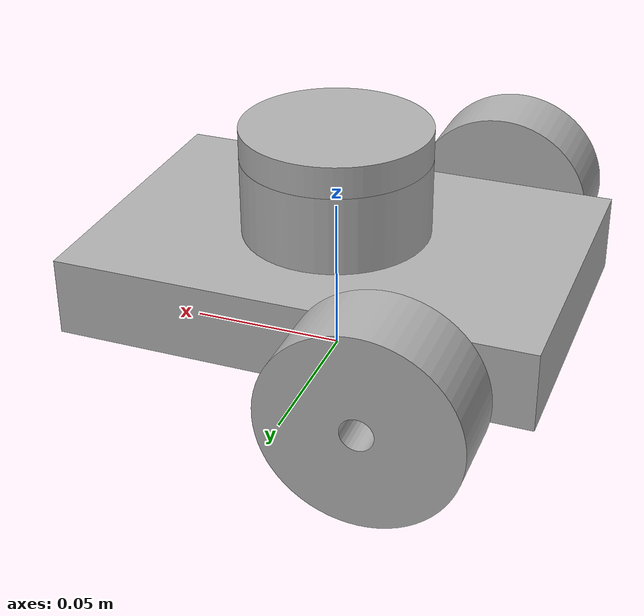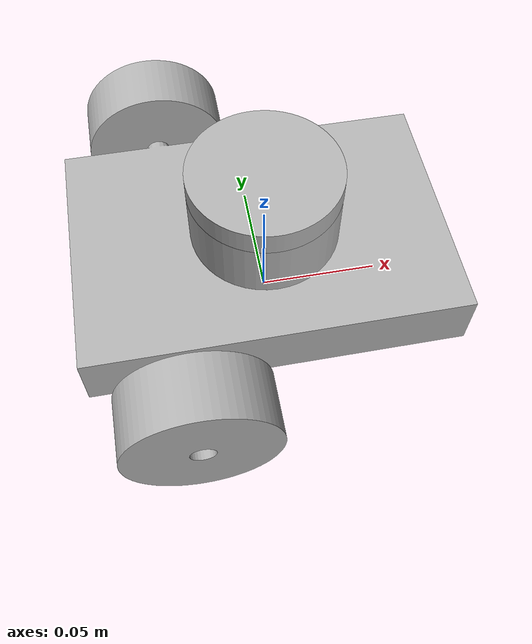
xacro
<?xml version="1.0" ?>
<robot name="rmp_bot_036" xmlns:xacro="http://www.ros.org/wiki/xacro">

<xacro:include filename="$(find rmp_bot_036_description)/urdf/materials.xacro" />
<xacro:include filename="$(find rmp_bot_036_description)/urdf/rmp_bot_036.trans" />
<xacro:include filename="$(find rmp_bot_036_description)/urdf/rmp_bot_036.gazebo" />
<link name="base_link">
  <inertial>
    <origin xyz="-0.0022330044536834058 1.0167481471132256e-17 0.033951078072480476" rpy="0 0 0"/>
    <mass value="0.47409202889451896"/>
    <inertia ixx="0.000417" iyy="0.000829" izz="0.001118" ixy="0.0" iyz="-0.0" ixz="-4e-06"/>
  </inertial>
  <visual>
    <origin xyz="0 0 0" rpy="0 0 0"/>
    <geometry>
      <mesh filename="package://rmp_bot_036_description/meshes/base_link.stl" scale="0.001 0.001 0.001"/>
    </geometry>
    <material name="silver"/>
  </visual>
  <collision>
    <origin xyz="0 0 0" rpy="0 0 0"/>
    <geometry>
      <mesh filename="package://rmp_bot_036_description/meshes/base_link.stl" scale="0.001 0.001 0.001"/>
    </geometry>
  </collision>
</link>

<link name="right_wheel_1">
  <inertial>
    <origin xyz="-1.6401167316631993e-07 -0.012500000000000011 1.0408340855860843e-17" rpy="0 0 0"/>
    <mass value="0.06391177554646729"/>
    <inertia ixx="1.8e-05" iyy="3e-05" izz="1.8e-05" ixy="0.0" iyz="-0.0" ixz="-0.0"/>
  </inertial>
  <visual>
    <origin xyz="0.037506 0.06 -0.03" rpy="0 0 0"/>
    <geometry>
      <mesh filename="package://rmp_bot_036_description/meshes/right_wheel_1.stl" scale="0.001 0.001 0.001"/>
    </geometry>
    <material name="silver"/>
  </visual>
  <collision>
    <origin xyz="0.037506 0.06 -0.03" rpy="0 0 0"/>
    <geometry>
      <mesh filename="package://rmp_bot_036_description/meshes/right_wheel_1.stl" scale="0.001 0.001 0.001"/>
    </geometry>
  </collision>
</link>

<link name="left_wheel_1">
  <inertial>
    <origin xyz="-1.6401167316631993e-07 0.012500000000000011 1.0408340855860843e-17" rpy="0 0 0"/>
    <mass value="0.06391177554646729"/>
    <inertia ixx="1.8e-05" iyy="3e-05" izz="1.8e-05" ixy="-0.0" iyz="0.0" ixz="-0.0"/>
  </inertial>
  <visual>
    <origin xyz="0.037506 -0.06 -0.03" rpy="0 0 0"/>
    <geometry>
      <mesh filename="package://rmp_bot_036_description/meshes/left_wheel_1.stl" scale="0.001 0.001 0.001"/>
    </geometry>
    <material name="silver"/>
  </visual>
  <collision>
    <origin xyz="0.037506 -0.06 -0.03" rpy="0 0 0"/>
    <geometry>
      <mesh filename="package://rmp_bot_036_description/meshes/left_wheel_1.stl" scale="0.001 0.001 0.001"/>
    </geometry>
  </collision>
</link>

<link name="ldar_1">
  <inertial>
    <origin xyz="0.0 0.0 0.005000000000000018" rpy="0 0 0"/>
    <mass value="0.24315927138785004"/>
    <inertia ixx="5.7e-05" iyy="5.7e-05" izz="0.000109" ixy="0.0" iyz="-0.0" ixz="-0.0"/>
  </inertial>
  <visual>
    <origin xyz="-0.0 -0.0 -0.0675" rpy="0 0 0"/>
    <geometry>
      <mesh filename="package://rmp_bot_036_description/meshes/ldar_1.stl" scale="0.001 0.001 0.001"/>
    </geometry>
    <material name="silver"/>
  </visual>
  <collision>
    <origin xyz="-0.0 -0.0 -0.0675" rpy="0 0 0"/>
    <geometry>
      <mesh filename="package://rmp_bot_036_description/meshes/ldar_1.stl" scale="0.001 0.001 0.001"/>
    </geometry>
  </collision>
</link>

<link name="caster_1">
  <inertial>
    <origin xyz="-0.020000164011658245 0.0 -0.006750000000000004" rpy="0 0 0"/>
    <mass value="0.00936587309851457"/>
    <inertia ixx="1e-06" iyy="1e-06" izz="1e-06" ixy="-0.0" iyz="-0.0" ixz="0.0"/>
  </inertial>
  <visual>
    <origin xyz="-0.072494 -0.0 -0.0175" rpy="0 0 0"/>
    <geometry>
      <mesh filename="package://rmp_bot_036_description/meshes/caster_1.stl" scale="0.001 0.001 0.001"/>
    </geometry>
    <material name="silver"/>
  </visual>
  <collision>
    <origin xyz="-0.072494 -0.0 -0.0175" rpy="0 0 0"/>
    <geometry>
      <mesh filename="package://rmp_bot_036_description/meshes/caster_1.stl" scale="0.001 0.001 0.001"/>
    </geometry>
  </collision>
</link>

<joint name="right_wheel_joint " type="continuous">
  <origin xyz="-0.037506 -0.06 0.03" rpy="0 0 0"/>
  <parent link="base_link"/>
  <child link="right_wheel_1"/>
  <axis xyz="0.0 1.0 0.0"/>
</joint>

<joint name="left_wheel_joint" type="continuous">
  <origin xyz="-0.037506 0.06 0.03" rpy="0 0 0"/>
  <parent link="base_link"/>
  <child link="left_wheel_1"/>
  <axis xyz="0.0 1.0 0.0"/>
</joint>

<joint name="ldar_joint" type="fixed">
  <origin xyz="0.0 0.0 0.0675" rpy="0 0 0"/>
  <parent link="base_link"/>
  <child link="ldar_1"/>
</joint>

<joint name="caster_joint" type="fixed">
  <origin xyz="0.072494 0.0 0.0175" rpy="0 0 0"/>
  <parent link="base_link"/>
  <child link="caster_1"/>
</joint>

</robot>

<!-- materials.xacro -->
<robot name="rmp_bot_036" xmlns:xacro="http://www.ros.org/wiki/xacro" >

<material name="silver">
  <color rgba="0.700 0.700 0.700 1.000"/>
</material>

</robot>

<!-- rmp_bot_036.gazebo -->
<robot name="rmp_bot_036" xmlns:xacro="http://www.ros.org/wiki/xacro" >

<xacro:property name="body_color" value="Gazebo/Silver" />

<gazebo>
  <plugin name="control" filename="libgazebo_ros_control.so"/>
</gazebo>
<gazebo reference="base_link">
  <material>${body_color}</material>
  <mu1>0.2</mu1>
  <mu2>0.2</mu2>
  <selfCollide>true</selfCollide>
  <gravity>true</gravity>
</gazebo>

<gazebo reference="right_wheel_1">
  <material>${body_color}</material>
  <mu1>1.0</mu1>
  <mu2>1.0</mu2>
  <selfCollide>true</selfCollide>
</gazebo>

<gazebo reference="left_wheel_1">
  <material>${body_color}</material>
  <mu1>1.0</mu1>
  <mu2>1.0</mu2>
  <selfCollide>true</selfCollide>
</gazebo>

<gazebo reference="ldar_1">
  <material>${body_color}</material>
  <mu1>0.2</mu1>
  <mu2>0.2</mu2>
  <selfCollide>true</selfCollide>
</gazebo>

<gazebo reference="caster_1">
  <material>${body_color}</material>
  <mu1>0.2</mu1>
  <mu2>0.2</mu2>
  <selfCollide>true</selfCollide>
</gazebo>

<gazebo>
  <plugin name="differential_drive_controller" filename="libgazebo_ros_diff_drive.so">

    <!-- Plugin update rate in Hz -->
    <updateRate>10</updateRate>

    <!-- Name of left joint, defaults to `left_joint` -->
    <leftJoint>left_wheel_joint</leftJoint>

    <!-- Name of right joint, defaults to `right_joint` -->
    <rightJoint>right_wheel_joint</rightJoint>

    <!-- The distance from the center of one wheel to the other, in meters, defaults to 0.34 m -->
    <wheelSeparation>0.141</wheelSeparation>

    <!-- Diameter of the wheels, in meters, defaults to 0.15 m -->
    <wheelDiameter>0.06</wheelDiameter>

    <!-- Wheel acceleration, in rad/s^2, defaults to 0.0 rad/s^2 -->
    <wheelAcceleration>1.0</wheelAcceleration>

    <!-- Maximum torque which the wheels can produce, in Nm, defaults to 5 Nm -->
    <wheelTorque>20</wheelTorque>

    <!-- Topic to receive geometry_msgs/Twist message commands, defaults to `cmd_vel` -->
    <commandTopic>cmd_vel</commandTopic>

    <!-- Topic to publish nav_msgs/Odometry messages, defaults to `odom` -->
    <odometryTopic>odom</odometryTopic>

    <!-- Odometry frame, defaults to `odom` -->
    <odometryFrame>odom</odometryFrame>

    <!-- Robot frame to calculate odometry from, defaults to `base_footprint` -->
    <robotBaseFrame>base_link</robotBaseFrame>

    <!-- Odometry source, 0 for ENCODER, 1 for WORLD, defaults to WORLD -->
    <odometrySource>1</odometrySource>

    <!-- Set to true to publish transforms for the wheel links, defaults to false -->
    <publishWheelTF>true</publishWheelTF>

    <!-- Set to true to publish transforms for the odometry, defaults to true -->
    <publishOdom>true</publishOdom>

    <!-- Set to true to publish sensor_msgs/JointState on /joint_states for the wheel joints, defaults to false -->
    <publishWheelJointState>true</publishWheelJointState>

    <!-- Set to true to swap right and left wheels, defaults to true -->
    <legacyMode>false</legacyMode>
  </plugin>
</gazebo>

<gazebo reference="ldar_1">
    <sensor type="ray" name="head_hokuyo_sensor">
      <pose>0 0 0 0 0 0</pose>
      <visualize>true</visualize>
      <update_rate>40</update_rate>
      <ray>
        <scan>
          <horizontal>
            <samples>720</samples>
            <resolution>1</resolution>
            <min_angle>-3.14</min_angle>
            <max_angle>3.14</max_angle>
          </horizontal>
        </scan>
        <range>
          <min>0.10</min>
          <max>30.0</max>
          <resolution>0.01</resolution>
        </range>
        <noise>
          <type>gaussian</type>
          <mean>0.0</mean>
          <stddev>0.01</stddev>
        </noise>
      </ray>
      <plugin name="gazebo_ros_head_hokuyo_controller" filename="libgazebo_ros_laser.so">
        <topicName>scan</topicName>
        <frameName>ldar_1</frameName>
      </plugin>
    </sensor>
  </gazebo>

</robot>
